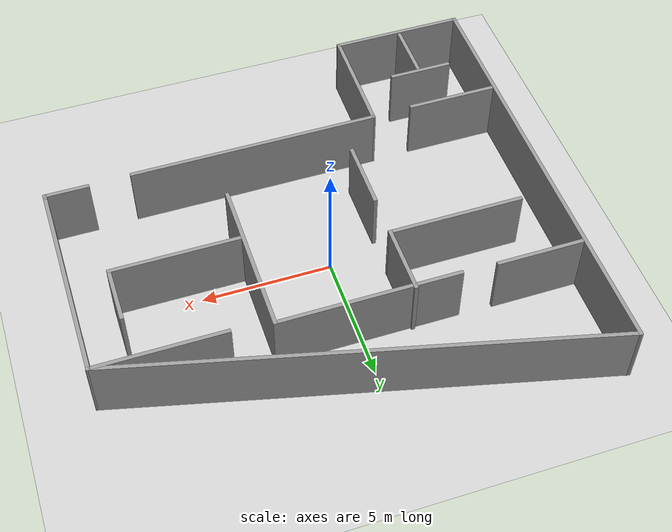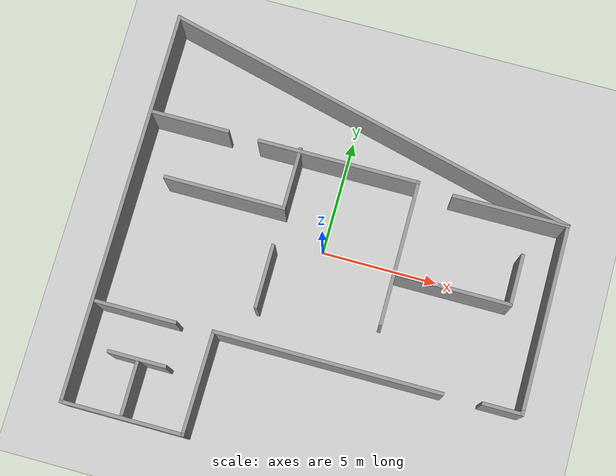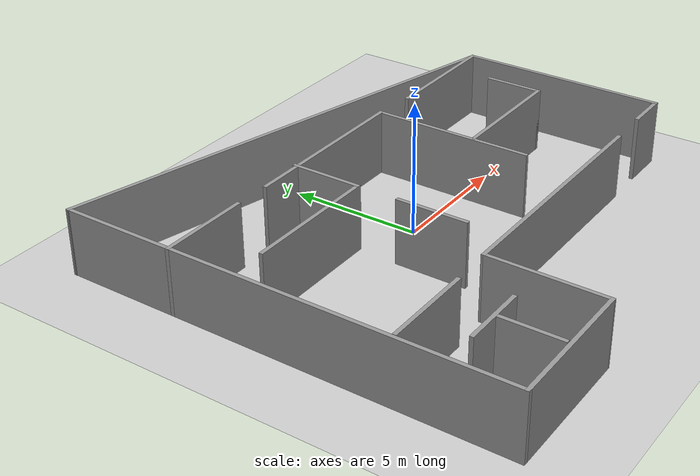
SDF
<sdf version="1.6">
 <world name="default">
  <light name="sun" type="directional">
   <pose>0 0 10 0 -0 0</pose>
   <diffuse>0.8 0.8 0.8 1</diffuse>
   <specular>0.2 0.2 0.2 1</specular>
   <attenuation>
    <range>1000</range>
    <constant>0.9</constant>
    <linear>0.01</linear>
    <quadratic>0.001</quadratic>
   </attenuation>
   <direction>-0.5 0.1 -0.9</direction>
  </light>
  <model name="ground_plane">
   <static>1</static>
   <link name="link">
    <collision name="collision">
     <geometry><plane><normal>0 0 1</normal><size>100 100</size></plane></geometry>
     <surface>
      <contact><collide_bitmask>65535</collide_bitmask></contact>
      <friction><ode><mu>100</mu><mu2>50</mu2></ode></friction>
     </surface>
    </collision>
    <visual name="visual">
     <cast_shadows>0</cast_shadows>
     <geometry><plane><normal>0 0 1</normal><size>100 100</size></plane></geometry>
     <material>
      <script><uri>file://media/materials/scripts/gazebo.material</uri><name>Gazebo/Grey</name></script>
     </material>
    </visual>
   </link>
  </model>
  <gravity>0 0 -9.8</gravity>
  <magnetic_field>6e-06 2.3e-05 -4.2e-05</magnetic_field>
  <atmosphere type="adiabatic"/>
  <physics name="default_physics" default="0" type="ode">
   <max_step_size>0.001</max_step_size>
   <real_time_factor>1</real_time_factor>
   <real_time_update_rate>1000</real_time_update_rate>
  </physics>
  <scene><ambient>0.4 0.4 0.4 1</ambient><background>0.7 0.7 0.7 1</background><shadows>1</shadows></scene>
  <audio><device>default</device></audio>
  <spherical_coordinates>
   <surface_model>EARTH_WGS84</surface_model>
   <latitude_deg>0</latitude_deg>
   <longitude_deg>0</longitude_deg>
   <elevation>0</elevation>
   <heading_deg>0</heading_deg>
  </spherical_coordinates>
  <model name="factory_v2">
   <pose>0.56587 -0.581749 0 0 -0 0</pose>
   <link name="Wall_11">
    <collision name="Wall_11_Collision">
     <geometry><box><size>2.25 0.15 2.5</size></box></geometry>
     <pose>0 0 1.25 0 -0 0</pose>
    </collision>
    <visual name="Wall_11_Visual">
     <pose>0 0 1.25 0 -0 0</pose>
     <geometry><box><size>2.25 0.15 2.5</size></box></geometry>
     <material>
      <script><uri>file://media/materials/scripts/gazebo.material</uri><name>Gazebo/Grey</name></script>
      <ambient>1 1 1 1</ambient>
     </material>
     <meta><layer>0</layer></meta>
    </visual>
    <pose>-6.5182 -7.19761 0 0 -0 -1.5708</pose>
   </link>
   <link name="Wall_13">
    <collision name="Wall_13_Collision">
     <geometry><box><size>5 0.15 2.5</size></box></geometry>
     <pose>0 0 1.25 0 -0 0</pose>
    </collision>
    <visual name="Wall_13_Visual">
     <pose>0 0 1.25 0 -0 0</pose>
     <geometry><box><size>5 0.15 2.5</size></box></geometry>
     <material>
      <script><uri>file://media/materials/scripts/gazebo.material</uri><name>Gazebo/Grey</name></script>
      <ambient>1 1 1 1</ambient>
     </material>
     <meta><layer>0</layer></meta>
    </visual>
    <pose>6.60114 3.92684 0 0 -0 3.14159</pose>
   </link>
   <link name="Wall_15">
    <collision name="Wall_15_Collision">
     <geometry><box><size>3.5 0.15 2.5</size></box></geometry>
     <pose>0 0 1.25 0 -0 0</pose>
    </collision>
    <visual name="Wall_15_Visual">
     <pose>0 0 1.25 0 -0 0</pose>
     <geometry><box><size>3.5 0.15 2.5</size></box></geometry>
     <material>
      <script><uri>file://media/materials/scripts/gazebo.material</uri><name>Gazebo/Grey</name></script>
      <ambient>1 1 1 1</ambient>
     </material>
     <meta><layer>0</layer></meta>
    </visual>
    <pose>-7.35145 4.12811 0 0 -0 0</pose>
   </link>
   <link name="Wall_17">
    <collision name="Wall_17_Collision">
     <geometry><box><size>7 0.15 2.5</size></box></geometry>
     <pose>0 0 1.25 0 -0 0</pose>
    </collision>
    <visual name="Wall_17_Visual">
     <pose>0 0 1.25 0 -0 0</pose>
     <geometry><box><size>7 0.15 2.5</size></box></geometry>
     <material>
      <script><uri>file://media/materials/scripts/gazebo.material</uri><name>Gazebo/Grey</name></script>
      <ambient>1 1 1 1</ambient>
     </material>
     <meta><layer>0</layer></meta>
    </visual>
    <pose>-0.827689 4.08766 0 0 -0 0</pose>
   </link>
   <link name="Wall_18">
    <collision name="Wall_18_Collision">
     <geometry><box><size>6.25 0.15 2.5</size></box></geometry>
     <pose>0 0 1.25 0 -0 0</pose>
    </collision>
    <visual name="Wall_18_Visual">
     <pose>0 0 1.25 0 -0 0</pose>
     <geometry><box><size>6.25 0.15 2.5</size></box></geometry>
     <material>
      <script><uri>file://media/materials/scripts/gazebo.material</uri><name>Gazebo/Grey</name></script>
      <ambient>1 1 1 1</ambient>
     </material>
     <meta><layer>0</layer></meta>
    </visual>
    <pose>2.59731 1.03765 0 0 -0 -1.5708</pose>
   </link>
   <link name="Wall_2">
    <collision name="Wall_2_Collision">
     <geometry><box><size>8 0.15 2.5</size></box></geometry>
     <pose>0 0 1.25 0 -0 0</pose>
    </collision>
    <visual name="Wall_2_Visual">
     <pose>0 0 1.25 0 -0 0</pose>
     <geometry><box><size>8 0.15 2.5</size></box></geometry>
     <material>
      <script><uri>file://media/materials/scripts/gazebo.material</uri><name>Gazebo/Grey</name></script>
      <ambient>1 1 1 1</ambient>
     </material>
     <meta><layer>0</layer></meta>
    </visual>
    <pose>9.02614 -0.038619 0 0 -0 1.5708</pose>
   </link>
   <link name="Wall_20">
    <collision name="Wall_20_Collision">
     <geometry><box><size>5 0.15 2.5</size></box></geometry>
     <pose>0 0 1.25 0 -0 0</pose>
    </collision>
    <visual name="Wall_20_Visual">
     <pose>0 0 1.25 0 -0 0</pose>
     <geometry><box><size>5 0.15 2.5</size></box></geometry>
     <material>
      <script><uri>file://media/materials/scripts/gazebo.material</uri><name>Gazebo/Grey</name></script>
      <ambient>1 1 1 1</ambient>
     </material>
     <meta><layer>0</layer></meta>
    </visual>
    <pose>5.09021 0.123009 0 0 -0 0</pose>
   </link>
   <link name="Wall_21">
    <collision name="Wall_21_Collision">
     <geometry><box><size>2.25 0.15 2.5</size></box></geometry>
     <pose>0 0 1.25 0 -0 0</pose>
    </collision>
    <visual name="Wall_21_Visual">
     <pose>0 0 1.25 0 -0 0</pose>
     <geometry><box><size>2.25 0.15 2.5</size></box></geometry>
     <material>
      <script><uri>file://media/materials/scripts/gazebo.material</uri><name>Gazebo/Grey</name></script>
      <ambient>1 1 1 1</ambient>
     </material>
     <meta><layer>0</layer></meta>
    </visual>
    <pose>7.51522 1.17301 0 0 -0 1.5708</pose>
   </link>
   <link name="Wall_27">
    <collision name="Wall_27_Collision">
     <geometry><box><size>2.75 0.15 2.5</size></box></geometry>
     <pose>0 0 1.25 0 -0 0</pose>
    </collision>
    <visual name="Wall_27_Visual">
     <pose>0 0 1.25 0 -0 0</pose>
     <geometry><box><size>2.75 0.15 2.5</size></box></geometry>
     <material>
      <script><uri>file://media/materials/scripts/gazebo.material</uri><name>Gazebo/Grey</name></script>
      <ambient>1 1 1 1</ambient>
     </material>
     <meta><layer>0</layer></meta>
    </visual>
    <pose>-2.5131 2.86857 0 0 -0 -1.5708</pose>
   </link>
   <link name="Wall_29">
    <collision name="Wall_29_Collision">
     <geometry><box><size>2.75 0.15 2.5</size></box></geometry>
     <pose>0 0 1.25 0 -0 0</pose>
    </collision>
    <visual name="Wall_29_Visual">
     <pose>0 0 1.25 0 -0 0</pose>
     <geometry><box><size>2.75 0.15 2.5</size></box></geometry>
     <material>
      <script><uri>file://media/materials/scripts/gazebo.material</uri><name>Gazebo/Grey</name></script>
      <ambient>1 1 1 1</ambient>
     </material>
     <meta><layer>0</layer></meta>
    </visual>
    <pose>-2.51211 -1.3694 0 0 -0 -1.5708</pose>
   </link>
   <link name="Wall_3">
    <collision name="Wall_3_Collision">
     <geometry><box><size>18.7524 0.15 2.5</size></box></geometry>
     <pose>0 0 1.25 0 -0 0</pose>
    </collision>
    <visual name="Wall_3_Visual">
     <pose>0 0 1.25 0 -0 0</pose>
     <geometry><box><size>18.7524 0.15 2.5</size></box></geometry>
     <material>
      <script><uri>file://media/materials/scripts/gazebo.material</uri><name>Gazebo/Grey</name></script>
      <ambient>1 1 1 1</ambient>
     </material>
     <meta><layer>0</layer></meta>
    </visual>
    <pose>0 6.17212 0 0 -0 2.89779</pose>
   </link>
   <link name="Wall_32">
    <collision name="Wall_32_Collision">
     <geometry><box><size>9.75 0.15 2.5</size></box></geometry>
     <pose>0 0 1.25 0 -0 0</pose>
    </collision>
    <visual name="Wall_32_Visual">
     <pose>0 0 1.25 0 -0 0</pose>
     <geometry><box><size>9.75 0.15 2.5</size></box></geometry>
     <material>
      <script><uri>file://media/materials/scripts/gazebo.material</uri><name>Gazebo/Grey</name></script>
      <ambient>1 1 1 1</ambient>
     </material>
     <meta><layer>0</layer></meta>
    </visual>
    <pose>0.914317 -4.11362 0 0 -0 0</pose>
   </link>
   <link name="Wall_34">
    <collision name="Wall_34_Collision">
     <geometry><box><size>0.25 0.15 2.5</size></box></geometry>
     <pose>0 0 1.25 0 -0 0</pose>
    </collision>
    <visual name="Wall_34_Visual">
     <pose>0 0 1.25 0 -0 0</pose>
     <geometry><box><size>0.25 0.15 2.5</size></box></geometry>
     <material>
      <script><uri>file://media/materials/scripts/gazebo.material</uri><name>Gazebo/Grey</name></script>
      <ambient>1 1 1 1</ambient>
     </material>
     <meta><layer>0</layer></meta>
    </visual>
    <pose>9.02614 -4.01362 0 0 -0 -1.5708</pose>
   </link>
   <link name="Wall_35">
    <collision name="Wall_35_Collision">
     <geometry><box><size>1.75 0.15 2.5</size></box></geometry>
     <pose>0 0 1.25 0 -0 0</pose>
    </collision>
    <visual name="Wall_35_Visual">
     <pose>0 0 1.25 0 -0 0</pose>
     <geometry><box><size>1.75 0.15 2.5</size></box></geometry>
     <material>
      <script><uri>file://media/materials/scripts/gazebo.material</uri><name>Gazebo/Grey</name></script>
      <ambient>1 1 1 1</ambient>
     </material>
     <meta><layer>0</layer></meta>
    </visual>
    <pose>8.22614 -4.06362 0 0 -0 3.14159</pose>
   </link>
   <link name="Wall_38">
    <collision name="Wall_38_Collision">
     <geometry><box><size>5.25 0.15 2.5</size></box></geometry>
     <pose>0 0 1.25 0 -0 0</pose>
    </collision>
    <visual name="Wall_38_Visual">
     <pose>0 0 1.25 0 -0 0</pose>
     <geometry><box><size>5.25 0.15 2.5</size></box></geometry>
     <material>
      <script><uri>file://media/materials/scripts/gazebo.material</uri><name>Gazebo/Grey</name></script>
      <ambient>1 1 1 1</ambient>
     </material>
     <meta><layer>0</layer></meta>
    </visual>
    <pose>-5.0631 1.56857 0 0 -0 3.14159</pose>
   </link>
   <link name="Wall_4">
    <collision name="Wall_4_Collision">
     <geometry><box><size>17 0.15 2.5</size></box></geometry>
     <pose>0 0 1.25 0 -0 0</pose>
    </collision>
    <visual name="Wall_4_Visual">
     <pose>0 0 1.25 0 -0 0</pose>
     <geometry><box><size>17 0.15 2.5</size></box></geometry>
     <material>
      <script><uri>file://media/materials/scripts/gazebo.material</uri><name>Gazebo/Grey</name></script>
      <ambient>1 1 1 1</ambient>
     </material>
     <meta><layer>0</layer></meta>
    </visual>
    <pose>-9.02614 -0.007594 0 0 -0 -1.5708</pose>
   </link>
   <link name="Wall_40">
    <collision name="Wall_40_Collision">
     <geometry><box><size>2.5 0.15 2.5</size></box></geometry>
     <pose>0 0 1.25 0 -0 0</pose>
    </collision>
    <visual name="Wall_40_Visual">
     <pose>0 0 1.25 0 -0 0</pose>
     <geometry><box><size>2.5 0.15 2.5</size></box></geometry>
     <material>
      <script><uri>file://media/materials/scripts/gazebo.material</uri><name>Gazebo/Grey</name></script>
      <ambient>1 1 1 1</ambient>
     </material>
     <meta><layer>0</layer></meta>
    </visual>
    <pose>-6.5768 -5.99577 0 0 -0 0</pose>
   </link>
   <link name="Wall_5">
    <collision name="Wall_5_Collision">
     <geometry><box><size>5.25 0.15 2.5</size></box></geometry>
     <pose>0 0 1.25 0 -0 0</pose>
    </collision>
    <visual name="Wall_5_Visual">
     <pose>0 0 1.25 0 -0 0</pose>
     <geometry><box><size>5.25 0.15 2.5</size></box></geometry>
     <material>
      <script><uri>file://media/materials/scripts/gazebo.material</uri><name>Gazebo/Grey</name></script>
      <ambient>1 1 1 1</ambient>
     </material>
     <meta><layer>0</layer></meta>
    </visual>
    <pose>-6.47614 -8.43259 0 0 -0 0</pose>
   </link>
   <link name="Wall_6">
    <collision name="Wall_6_Collision">
     <geometry><box><size>4.46917 0.15 2.5</size></box></geometry>
     <pose>0 0 1.25 0 -0 0</pose>
    </collision>
    <visual name="Wall_6_Visual">
     <pose>0 0 1.25 0 -0 0</pose>
     <geometry><box><size>4.46917 0.15 2.5</size></box></geometry>
     <material>
      <script><uri>file://media/materials/scripts/gazebo.material</uri><name>Gazebo/Grey</name></script>
      <ambient>1 1 1 1</ambient>
     </material>
     <meta><layer>0</layer></meta>
    </visual>
    <pose>-3.90591 -6.27311 0 0 -0 1.56143</pose>
   </link>
   <link name="Wall_9">
    <collision name="Wall_9_Collision">
     <geometry><box><size>3.5 0.15 2.5</size></box></geometry>
     <pose>0 0 1.25 0 -0 0</pose>
    </collision>
    <visual name="Wall_9_Visual">
     <pose>0 0 1.25 0 -0 0</pose>
     <geometry><box><size>3.5 0.15 2.5</size></box></geometry>
     <material>
      <script><uri>file://media/materials/scripts/gazebo.material</uri><name>Gazebo/Grey</name></script>
      <ambient>1 1 1 1</ambient>
     </material>
     <meta><layer>0</layer></meta>
    </visual>
    <pose>-7.18963 -4.16528 0 0 -0 0</pose>
   </link>
   <static>1</static>
  </model>
 </world>
</sdf>
